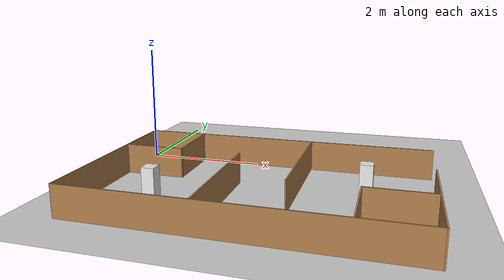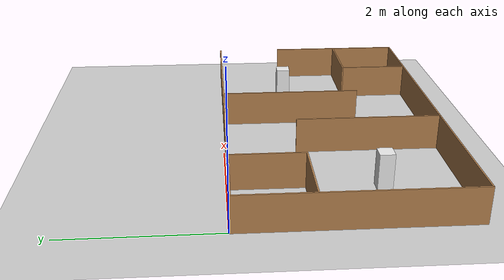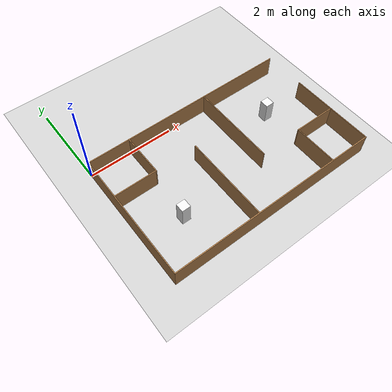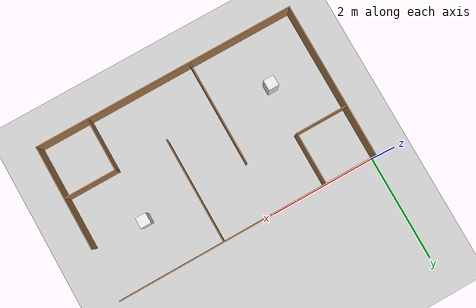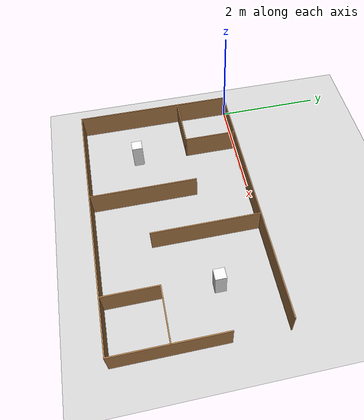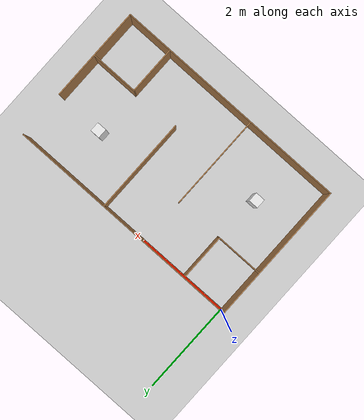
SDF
<sdf version="1.6">
 <world name="default">
  <light name="sun" type="directional">
   <pose>0 0 10 0 -0 0</pose>
   <diffuse>0.8 0.8 0.8 1</diffuse>
   <specular>0.2 0.2 0.2 1</specular>
   <attenuation>
    <range>1000</range>
    <constant>0.9</constant>
    <linear>0.01</linear>
    <quadratic>0.001</quadratic>
   </attenuation>
   <direction>-0.5 0.1 -0.9</direction>
  </light>
  <model name="ground_plane">
   <static>1</static>
   <link name="link">
    <collision name="collision">
     <geometry><plane><normal>0 0 1</normal><size>100 100</size></plane></geometry>
     <surface>
      <contact><collide_bitmask>65535</collide_bitmask></contact>
      <friction><ode><mu>100</mu><mu2>50</mu2></ode></friction>
     </surface>
    </collision>
    <visual name="visual">
     <cast_shadows>0</cast_shadows>
     <geometry><plane><normal>0 0 1</normal><size>100 100</size></plane></geometry>
     <material>
      <script><uri>file://media/materials/scripts/gazebo.material</uri><name>Gazebo/Grey</name></script>
     </material>
    </visual>
   </link>
  </model>
  <gravity>0 0 -9.8</gravity>
  <magnetic_field>6e-06 2.3e-05 -4.2e-05</magnetic_field>
  <atmosphere type="adiabatic"/>
  <physics name="default_physics" default="0" type="ode">
   <max_step_size>0.001</max_step_size>
   <real_time_factor>1</real_time_factor>
   <real_time_update_rate>1000</real_time_update_rate>
  </physics>
  <scene><ambient>0.4 0.4 0.4 1</ambient><background>0.7 0.7 0.7 1</background><shadows>1</shadows></scene>
  <audio><device>default</device></audio>
  <spherical_coordinates>
   <surface_model>EARTH_WGS84</surface_model>
   <latitude_deg>0</latitude_deg>
   <longitude_deg>0</longitude_deg>
   <elevation>0</elevation>
   <heading_deg>0</heading_deg>
  </spherical_coordinates>
  <model name="exp_03">
   <pose>2.49178 -1.50682 0 0 -0 0</pose>
   <link name="Wall_18">
    <collision name="Wall_18_Collision">
     <geometry><box><size>5 0.02 0.5</size></box></geometry>
     <pose>0 0 0.25 0 -0 0</pose>
    </collision>
    <visual name="Wall_18_Visual">
     <pose>0 0 0.25 0 -0 0</pose>
     <geometry><box><size>5 0.02 0.5</size></box></geometry>
     <material>
      <script><uri>file://media/materials/scripts/gazebo.material</uri><name>Gazebo/Wood</name></script>
      <ambient>1 1 1 1</ambient>
     </material>
     <meta><layer>0</layer></meta>
    </visual>
    <pose>-0 -1.49 0 0 -0 -2.8e-05</pose>
   </link>
   <link name="Wall_20">
    <collision name="Wall_20_Collision">
     <geometry><box><size>3 0.02 0.5</size></box></geometry>
     <pose>0 0 0.25 0 -0 0</pose>
    </collision>
    <visual name="Wall_20_Visual">
     <pose>0 0 0.25 0 -0 0</pose>
     <geometry><box><size>3 0.02 0.5</size></box></geometry>
     <material>
      <script><uri>file://media/materials/scripts/gazebo.material</uri><name>Gazebo/Wood</name></script>
      <ambient>1 1 1 1</ambient>
     </material>
     <meta><layer>0</layer></meta>
    </visual>
    <pose>-2.49019 7.1e-05 0 0 -0 1.5708</pose>
   </link>
   <link name="Wall_22">
    <collision name="Wall_22_Collision">
     <geometry><box><size>5 0.02 0.5</size></box></geometry>
     <pose>0 0 0.25 0 -0 0</pose>
    </collision>
    <visual name="Wall_22_Visual">
     <pose>0 0 0.25 0 -0 0</pose>
     <geometry><box><size>5 0.02 0.5</size></box></geometry>
     <material>
      <script><uri>file://media/materials/scripts/gazebo.material</uri><name>Gazebo/Wood</name></script>
      <ambient>1 1 1 1</ambient>
     </material>
     <meta><layer>0</layer></meta>
    </visual>
    <pose>-0.000194 1.49007 0 0 -0 0</pose>
   </link>
   <link name="Wall_24">
    <collision name="Wall_24_Collision">
     <geometry><box><size>2 0.02 0.5</size></box></geometry>
     <pose>0 0 0.25 0 -0 0</pose>
    </collision>
    <visual name="Wall_24_Visual">
     <pose>0 0 0.25 0 -0 0</pose>
     <geometry><box><size>2 0.02 0.5</size></box></geometry>
     <material>
      <script><uri>file://media/materials/scripts/gazebo.material</uri><name>Gazebo/Wood</name></script>
      <ambient>1 1 1 1</ambient>
     </material>
     <meta><layer>0</layer></meta>
    </visual>
    <pose>2.49019 -0.500071 0 0 -0 1.5708</pose>
   </link>
   <link name="Wall_26">
    <collision name="Wall_26_Collision">
     <geometry><box><size>1 0.02 0.5</size></box></geometry>
     <pose>0 0 0.25 0 -0 0</pose>
    </collision>
    <visual name="Wall_26_Visual">
     <pose>0 0 0.25 0 -0 0</pose>
     <geometry><box><size>1 0.02 0.5</size></box></geometry>
     <material>
      <script><uri>file://media/materials/scripts/gazebo.material</uri><name>Gazebo/Wood</name></script>
      <ambient>1 1 1 1</ambient>
     </material>
     <meta><layer>0</layer></meta>
    </visual>
    <pose>-1.50296 0.986674 0 0 -0 -1.5708</pose>
   </link>
   <link name="Wall_28">
    <collision name="Wall_28_Collision">
     <geometry><box><size>1 0.02 0.5</size></box></geometry>
     <pose>0 0 0.25 0 -0 0</pose>
    </collision>
    <visual name="Wall_28_Visual">
     <pose>0 0 0.25 0 -0 0</pose>
     <geometry><box><size>1 0.02 0.5</size></box></geometry>
     <material>
      <script><uri>file://media/materials/scripts/gazebo.material</uri><name>Gazebo/Wood</name></script>
      <ambient>1 1 1 1</ambient>
     </material>
     <meta><layer>0</layer></meta>
    </visual>
    <pose>-1.99228 0.497134 0 0 -0 3.14159</pose>
   </link>
   <link name="Wall_30">
    <collision name="Wall_30_Collision">
     <geometry><box><size>2 0.02 0.5</size></box></geometry>
     <pose>0 0 0.25 0 -0 0</pose>
    </collision>
    <visual name="Wall_30_Visual">
     <pose>0 0 0.25 0 -0 0</pose>
     <geometry><box><size>2 0.02 0.5</size></box></geometry>
     <material>
      <script><uri>file://media/materials/scripts/gazebo.material</uri><name>Gazebo/Wood</name></script>
      <ambient>1 1 1 1</ambient>
     </material>
     <meta><layer>0</layer></meta>
    </visual>
    <pose>-0.50256 -0.485708 0 0 -0 -1.5708</pose>
   </link>
   <link name="Wall_32">
    <collision name="Wall_32_Collision">
     <geometry><box><size>2 0.02 0.5</size></box></geometry>
     <pose>0 0 0.25 0 -0 0</pose>
    </collision>
    <visual name="Wall_32_Visual">
     <pose>0 0 0.25 0 -0 0</pose>
     <geometry><box><size>2 0.02 0.5</size></box></geometry>
     <material>
      <script><uri>file://media/materials/scripts/gazebo.material</uri><name>Gazebo/Wood</name></script>
      <ambient>1 1 1 1</ambient>
     </material>
     <meta><layer>0</layer></meta>
    </visual>
    <pose>0.49232 0.482089 0 0 -0 -1.5708</pose>
   </link>
   <link name="Wall_34">
    <collision name="Wall_34_Collision">
     <geometry><box><size>1 0.02 0.5</size></box></geometry>
     <pose>0 0 0.25 0 -0 0</pose>
    </collision>
    <visual name="Wall_34_Visual">
     <pose>0 0 0.25 0 -0 0</pose>
     <geometry><box><size>1 0.02 0.5</size></box></geometry>
     <material>
      <script><uri>file://media/materials/scripts/gazebo.material</uri><name>Gazebo/Wood</name></script>
      <ambient>1 1 1 1</ambient>
     </material>
     <meta><layer>0</layer></meta>
    </visual>
    <pose>1.99177 -0.484331 0 0 -0 3.14159</pose>
   </link>
   <link name="Wall_36">
    <collision name="Wall_36_Collision">
     <geometry><box><size>1 0.02 0.5</size></box></geometry>
     <pose>0 0 0.25 0 -0 0</pose>
    </collision>
    <visual name="Wall_36_Visual">
     <pose>0 0 0.25 0 -0 0</pose>
     <geometry><box><size>1 0.02 0.5</size></box></geometry>
     <material>
      <script><uri>file://media/materials/scripts/gazebo.material</uri><name>Gazebo/Wood</name></script>
      <ambient>1 1 1 1</ambient>
     </material>
     <meta><layer>0</layer></meta>
    </visual>
    <pose>1.50181 -0.988161 0 0 -0 -1.5708</pose>
   </link>
   <static>1</static>
  </model>
  <model name="modify_box">
   <link name="link">
    <inertial>
     <mass>1</mass>
     <inertia>
      <ixx>0.166667</ixx>
      <ixy>0</ixy>
      <ixz>0</ixz>
      <iyy>0.166667</iyy>
      <iyz>0</iyz>
      <izz>0.166667</izz>
     </inertia>
    </inertial>
    <visual name="visual">
     <geometry><box><size>0.2 0.2 0.5</size></box></geometry>
     <material>
      <script><name>Gazebo/White</name><uri>file://media/materials/scripts/gazebo.material</uri></script>
      <shader type="vertex"><normal_map>__default__</normal_map></shader>
      <ambient>0.3 0.3 0.3 1</ambient>
      <diffuse>0.7 0.7 0.7 1</diffuse>
      <specular>0.01 0.01 0.01 1</specular>
      <emissive>0 0 0 1</emissive>
     </material>
    </visual>
    <collision name="collision">
     <geometry><box><size>0.199419 0.203042 0.511064</size></box></geometry>
     <surface>
      <friction>
       <ode><mu>1</mu><mu2>1</mu2><fdir1>0 0 0</fdir1><slip1>0</slip1><slip2>0</slip2></ode>
       <torsional>
        <coefficient>1</coefficient>
        <patch_radius>0</patch_radius>
        <surface_radius>0</surface_radius>
        <use_patch_radius>1</use_patch_radius>
        <ode><slip>0</slip></ode>
       </torsional>
      </friction>
      <bounce><restitution_coefficient>0</restitution_coefficient><threshold>1e+06</threshold></bounce>
      <contact>
       <collide_without_contact>0</collide_without_contact>
       <collide_without_contact_bitmask>1</collide_without_contact_bitmask>
       <collide_bitmask>1</collide_bitmask>
       <ode>
        <soft_cfm>0</soft_cfm>
        <soft_erp>0.2</soft_erp>
        <kp>1e+13</kp>
        <kd>1</kd>
        <max_vel>0.01</max_vel>
        <min_depth>0</min_depth>
       </ode>
       <bullet>
        <split_impulse>1</split_impulse>
        <split_impulse_penetration_threshold>-0.01</split_impulse_penetration_threshold>
        <soft_cfm>0</soft_cfm>
        <soft_erp>0.2</soft_erp>
        <kp>1e+13</kp>
        <kd>1</kd>
       </bullet>
      </contact>
     </surface>
    </collision>
   </link>
   <static>0</static>
   <pose>0.938384 -1.98915 0.253566 0 -0 0</pose>
  </model>
  <model name="modify_box_clone">
   <link name="link">
    <inertial>
     <mass>1</mass>
     <inertia>
      <ixx>0.166667</ixx>
      <ixy>0</ixy>
      <ixz>0</ixz>
      <iyy>0.166667</iyy>
      <iyz>0</iyz>
      <izz>0.166667</izz>
     </inertia>
    </inertial>
    <visual name="visual">
     <geometry><box><size>0.2 0.2 0.5</size></box></geometry>
     <material>
      <script><name>Gazebo/White</name><uri>file://media/materials/scripts/gazebo.material</uri></script>
      <shader type="vertex"><normal_map>__default__</normal_map></shader>
      <ambient>0.3 0.3 0.3 1</ambient>
      <diffuse>0.7 0.7 0.7 1</diffuse>
      <specular>0.01 0.01 0.01 1</specular>
      <emissive>0 0 0 1</emissive>
     </material>
    </visual>
    <collision name="collision">
     <geometry><box><size>0.199419 0.203042 0.511064</size></box></geometry>
     <surface>
      <friction>
       <ode><mu>1</mu><mu2>1</mu2><fdir1>0 0 0</fdir1><slip1>0</slip1><slip2>0</slip2></ode>
       <torsional>
        <coefficient>1</coefficient>
        <patch_radius>0</patch_radius>
        <surface_radius>0</surface_radius>
        <use_patch_radius>1</use_patch_radius>
        <ode><slip>0</slip></ode>
       </torsional>
      </friction>
      <bounce><restitution_coefficient>0</restitution_coefficient><threshold>1e+06</threshold></bounce>
      <contact>
       <collide_without_contact>0</collide_without_contact>
       <collide_without_contact_bitmask>1</collide_without_contact_bitmask>
       <collide_bitmask>1</collide_bitmask>
       <ode>
        <soft_cfm>0</soft_cfm>
        <soft_erp>0.2</soft_erp>
        <kp>1e+13</kp>
        <kd>1</kd>
        <max_vel>0.01</max_vel>
        <min_depth>0</min_depth>
       </ode>
       <bullet>
        <split_impulse>1</split_impulse>
        <split_impulse_penetration_threshold>-0.01</split_impulse_penetration_threshold>
        <soft_cfm>0</soft_cfm>
        <soft_erp>0.2</soft_erp>
        <kp>1e+13</kp>
        <kd>1</kd>
       </bullet>
      </contact>
     </surface>
    </collision>
   </link>
   <static>0</static>
   <pose>3.99707 -1.00404 0.253566 0 -0 0</pose>
  </model>
 </world>
</sdf>
